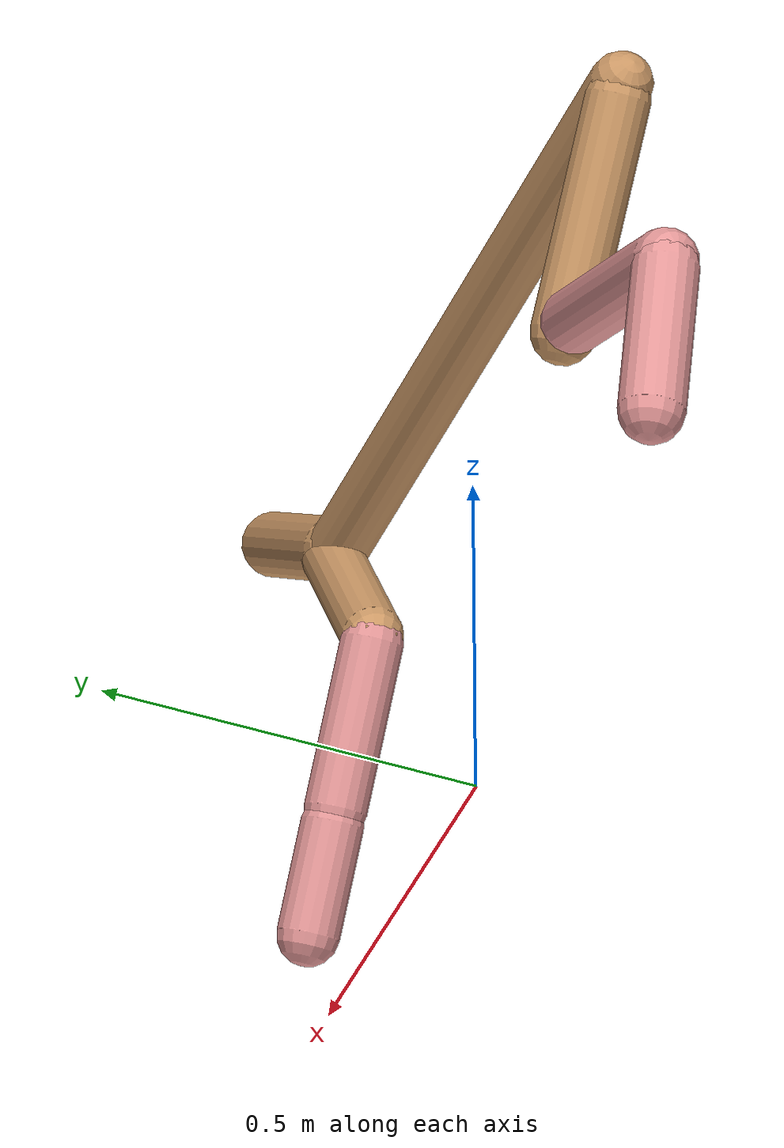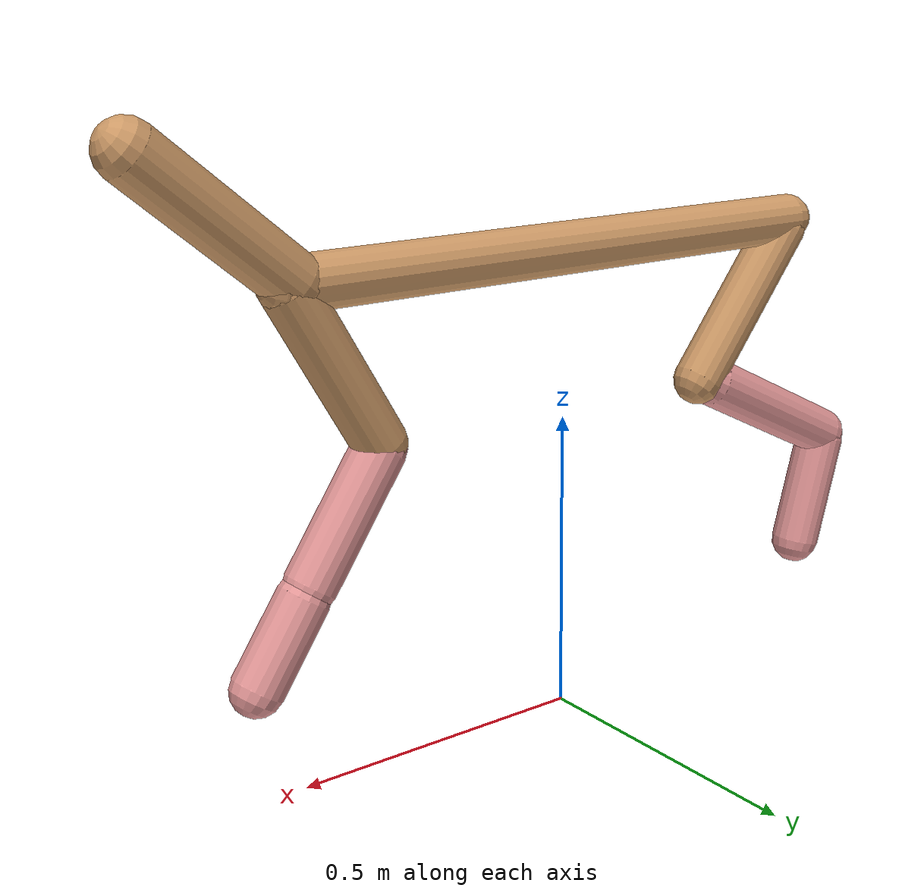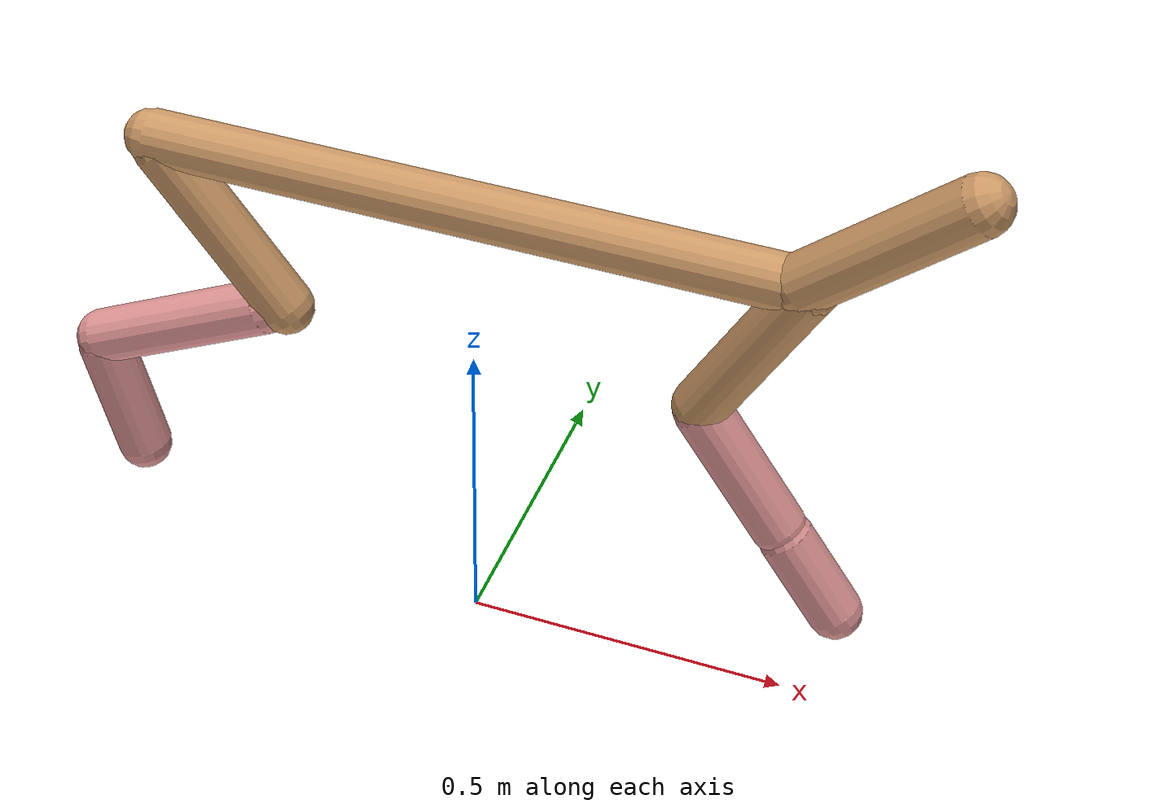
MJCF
<mujoco model="cheetah">
  <compiler angle="radian" coordinate="local" inertiafromgeom="true" settotalmass="14" />
  <default>
    <joint armature=".1" damping=".01" limited="true" solimplimit="0 .8 .03" solreflimit=".02 1" stiffness="8" />
    <geom conaffinity="0" condim="3" contype="1" friction="0.8 .1 .1" rgba="0.8 0.6 .4 1" solimp="0.0 0.8 0.01" solref="0.02 1" />
    <motor ctrllimited="true" ctrlrange="-1 1" />
  </default>
  <size nstack="300000" nuser_geom="1" />
  <option gravity="0 0 -9.81" timestep="0.01" />
  <worldbody>
    <body name="torso" pos="0.0 0.0 0.7732884900820095">
      <joint armature="0" axis="1 0 0" damping="0" limited="false" name="ignorex" pos="0 0 0" stiffness="0" type="slide" />
      <joint armature="0" axis="0 0 1" damping="0" limited="false" name="ignorez" pos="0 0 0" stiffness="0" type="slide" />
      <joint armature="0" axis="0 1 0" damping="0" limited="false" name="ignorey" pos="0 0 0" stiffness="0" type="hinge" />
      <geom fromto="-0.5 0.0 0.0 0.49370091748630246 0.0 0.0" name="torso" size="0.04167400948129931" type="capsule" />
      <geom axisangle="0 1 0 .87" name="head" pos="0.5937009174863025 0.0 0.1" size="0.045253013987770825 0.15" type="capsule" />

      <body name="bthigh" pos="-.5 0 0">
        <joint axis="0 1 0" damping="6" name="bthigh" pos="0 0 0" range="-.52 1.05" stiffness="240" type="hinge" />
        <geom axisangle="0 1 0 -3.8" name="bthigh" pos="0.10549092648488724 0.0 -0.1371382044303534" size="0.04275137264809589 0.15400578903550116" type="capsule" />
        <body name="bshin" pos="0.17098185296977447 0.0 -0.2642764088607068">
          <joint axis="0 1 0" damping="4.5" name="bshin" pos="0 0 0" range="-.785 .785" stiffness="180" type="hinge" />
          <geom axisangle="0 1 0 -2.03" name="bshin" pos="-0.1483327819894081 0.0 -0.07416639099470405" rgba="0.9 0.6 0.6 1" size="0.04275137264809589 0.1593163334850012" type="capsule" />
          <body name="bfoot" pos="-0.2966655639788162 0.0 -0.1483327819894081">
            <joint axis="0 1 0" damping="3" name="bfoot" pos="0 0 0" range="-.4 .785" stiffness="120" type="hinge" />
            <geom axisangle="0 1 0 -.27" name="bfoot" pos="0.03172502187003674 0.0 -0.1025775707131188" rgba="0.9 0.6 0.6 1" size="0.04275137264809589 0.09983823565060077" type="capsule" />
            <inertial mass="10" />
          </body>
        </body>
      </body>
      <body name="fthigh" pos="0.4937009174863025 0.0 0.0">
        <joint axis="0 1 0" damping="4.5" name="fthigh" pos="0 0 0" range="-1.5 0.8" stiffness="180" type="hinge" />
        <geom axisangle="0 1 0 .52" name="fthigh" pos="-0.07512525060758603 0.0 -0.12878614389871887" size="0.041922522839715086 0.14317175099968318" type="capsule" />
        <body name="fshin" pos="-0.15025050121517206 0.0 -0.25757228779743774">
          <joint axis="0 1 0" damping="3" name="fshin" pos="0 0 0" range="-1.2 1.1" stiffness="120" type="hinge" />
          <geom axisangle="0 1 0 -.6" name="fshin" pos="0.06974646013079226 0.0 -0.0965720217195585" rgba="0.9 0.6 0.6 1" size="0.041922522839715086 0.11410680906741667" type="capsule" />
          <body name="ffoot" pos="0.13949292026158452 0.0 -0.193144043439117">
            <joint axis="0 1 0" damping="1.5" name="ffoot" pos="0 0 0" range="-3.1 -0.3" stiffness="60" type="hinge" />
            <geom axisangle="0 1 0 -.6" name="ffoot" pos="0.04789497451054176 0.0 -0.07450329368306498" rgba="0.9 0.6 0.6 1" size="0.041922522839715086 0.075353553157728" type="capsule" />
            <inertial mass="10" />
          </body>
        </body>
      </body>
    </body>
  </worldbody>
  <actuator>
    <motor gear="120" joint="bthigh" name="bthigh" />
    <motor gear="90" joint="bshin" name="bshin" />
    <motor gear="60" joint="bfoot" name="bfoot" />
    <motor gear="120" joint="fthigh" name="fthigh" />
    <motor gear="60" joint="fshin" name="fshin" />
    <motor gear="30" joint="ffoot" name="ffoot" />
  </actuator>
</mujoco>
